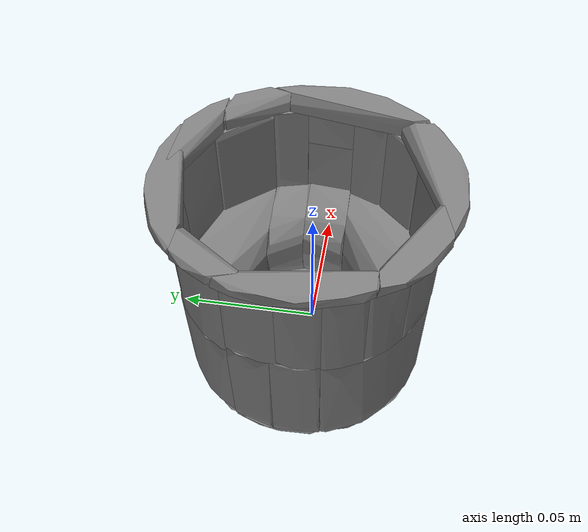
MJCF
<mujoco model="mug">
  <asset>
    <mesh file="../../meshes/ycb/mug/simple_mesh.stl" name="mug_mesh" scale="1 1 1"/>
    <mesh file="../../meshes/ycb/mug/mug_hull_1.stl" name="mug_hull_mesh_1" scale="1 1 1"/>
    <mesh file="../../meshes/ycb/mug/mug_hull_2.stl" name="mug_hull_mesh_2" scale="1 1 1"/>
    <mesh file="../../meshes/ycb/mug/mug_hull_3.stl" name="mug_hull_mesh_3" scale="1 1 1"/>
    <mesh file="../../meshes/ycb/mug/mug_hull_4.stl" name="mug_hull_mesh_4" scale="1 1 1"/>
    <mesh file="../../meshes/ycb/mug/mug_hull_5.stl" name="mug_hull_mesh_5" scale="1 1 1"/>
    <mesh file="../../meshes/ycb/mug/mug_hull_6.stl" name="mug_hull_mesh_6" scale="1 1 1"/>
    <mesh file="../../meshes/ycb/mug/mug_hull_7.stl" name="mug_hull_mesh_7" scale="1 1 1"/>
    <mesh file="../../meshes/ycb/mug/mug_hull_8.stl" name="mug_hull_mesh_8" scale="1 1 1"/>
    <mesh file="../../meshes/ycb/mug/mug_hull_9.stl" name="mug_hull_mesh_9" scale="1 1 1"/>
    <mesh file="../../meshes/ycb/mug/mug_hull_10.stl" name="mug_hull_mesh_10" scale="1 1 1"/>
    <mesh file="../../meshes/ycb/mug/mug_hull_11.stl" name="mug_hull_mesh_11" scale="1 1 1"/>
    <mesh file="../../meshes/ycb/mug/mug_hull_12.stl" name="mug_hull_mesh_12" scale="1 1 1"/>
    <mesh file="../../meshes/ycb/mug/mug_hull_13.stl" name="mug_hull_mesh_13" scale="1 1 1"/>
    <mesh file="../../meshes/ycb/mug/mug_hull_14.stl" name="mug_hull_mesh_14" scale="1 1 1"/>
    <mesh file="../../meshes/ycb/mug/mug_hull_15.stl" name="mug_hull_mesh_15" scale="1 1 1"/>
    <mesh file="../../meshes/ycb/mug/mug_hull_16.stl" name="mug_hull_mesh_16" scale="1 1 1"/>
    <mesh file="../../meshes/ycb/mug/mug_hull_17.stl" name="mug_hull_mesh_17" scale="1 1 1"/>
    <mesh file="../../meshes/ycb/mug/mug_hull_18.stl" name="mug_hull_mesh_18" scale="1 1 1"/>
    <mesh file="../../meshes/ycb/mug/mug_hull_19.stl" name="mug_hull_mesh_19" scale="1 1 1"/>
    <mesh file="../../meshes/ycb/mug/mug_hull_20.stl" name="mug_hull_mesh_20" scale="1 1 1"/>
    <mesh file="../../meshes/ycb/mug/mug_hull_21.stl" name="mug_hull_mesh_21" scale="1 1 1"/>
    <mesh file="../../meshes/ycb/mug/mug_hull_22.stl" name="mug_hull_mesh_22" scale="1 1 1"/>
    <mesh file="../../meshes/ycb/mug/mug_hull_23.stl" name="mug_hull_mesh_23" scale="1 1 1"/>
    <mesh file="../../meshes/ycb/mug/mug_hull_24.stl" name="mug_hull_mesh_24" scale="1 1 1"/>
    <mesh file="../../meshes/ycb/mug/mug_hull_25.stl" name="mug_hull_mesh_25" scale="1 1 1"/>
    <mesh file="../../meshes/ycb/mug/mug_hull_26.stl" name="mug_hull_mesh_26" scale="1 1 1"/>
    <mesh file="../../meshes/ycb/mug/mug_hull_27.stl" name="mug_hull_mesh_27" scale="1 1 1"/>
    <mesh file="../../meshes/ycb/mug/mug_hull_28.stl" name="mug_hull_mesh_28" scale="1 1 1"/>
    <mesh file="../../meshes/ycb/mug/mug_hull_29.stl" name="mug_hull_mesh_29" scale="1 1 1"/>
    <mesh file="../../meshes/ycb/mug/mug_hull_30.stl" name="mug_hull_mesh_30" scale="1 1 1"/>
    <mesh file="../../meshes/ycb/mug/mug_hull_31.stl" name="mug_hull_mesh_31" scale="1 1 1"/>
    <mesh file="../../meshes/ycb/mug/mug_hull_32.stl" name="mug_hull_mesh_32" scale="1 1 1"/>
    <mesh file="../../meshes/ycb/mug/mug_hull_33.stl" name="mug_hull_mesh_33" scale="1 1 1"/>
    <mesh file="../../meshes/ycb/mug/mug_hull_34.stl" name="mug_hull_mesh_34" scale="1 1 1"/>
    <mesh file="../../meshes/ycb/mug/mug_hull_35.stl" name="mug_hull_mesh_35" scale="1 1 1"/>
    <mesh file="../../meshes/ycb/mug/mug_hull_36.stl" name="mug_hull_mesh_36" scale="1 1 1"/>
    <mesh file="../../meshes/ycb/mug/mug_hull_37.stl" name="mug_hull_mesh_37" scale="1 1 1"/>
    <mesh file="../../meshes/ycb/mug/mug_hull_38.stl" name="mug_hull_mesh_38" scale="1 1 1"/>
    <mesh file="../../meshes/ycb/mug/mug_hull_39.stl" name="mug_hull_mesh_39" scale="1 1 1"/>
  </asset>
  <worldbody>
    <body>
      <body name="object">
        <geom pos="0 0 0" mesh="mug_mesh" type="mesh" contype="0" conaffinity="0" group="1"/>
        <geom pos="0 0 0" mesh="mug_hull_mesh_1" type="mesh" margin="0.001" solimp="0.998 0.998 0.001" solref="0.001 1" density="400" friction="0.95 0.3 0.1" group="0" condim="4"/>
        <geom pos="0 0 0" mesh="mug_hull_mesh_2" type="mesh" margin="0.001" solimp="0.998 0.998 0.001" solref="0.001 1" density="400" friction="0.95 0.3 0.1" group="0" condim="4"/>
        <geom pos="0 0 0" mesh="mug_hull_mesh_3" type="mesh" margin="0.001" solimp="0.998 0.998 0.001" solref="0.001 1" density="400" friction="0.95 0.3 0.1" group="0" condim="4"/>
        <geom pos="0 0 0" mesh="mug_hull_mesh_4" type="mesh" margin="0.001" solimp="0.998 0.998 0.001" solref="0.001 1" density="400" friction="0.95 0.3 0.1" group="0" condim="4"/>
        <geom pos="0 0 0" mesh="mug_hull_mesh_5" type="mesh" margin="0.001" solimp="0.998 0.998 0.001" solref="0.001 1" density="400" friction="0.95 0.3 0.1" group="0" condim="4"/>
        <geom pos="0 0 0" mesh="mug_hull_mesh_6" type="mesh" margin="0.001" solimp="0.998 0.998 0.001" solref="0.001 1" density="400" friction="0.95 0.3 0.1" group="0" condim="4"/>
        <geom pos="0 0 0" mesh="mug_hull_mesh_7" type="mesh" margin="0.001" solimp="0.998 0.998 0.001" solref="0.001 1" density="400" friction="0.95 0.3 0.1" group="0" condim="4"/>
        <geom pos="0 0 0" mesh="mug_hull_mesh_8" type="mesh" margin="0.001" solimp="0.998 0.998 0.001" solref="0.001 1" density="400" friction="0.95 0.3 0.1" group="0" condim="4"/>
        <geom pos="0 0 0" mesh="mug_hull_mesh_9" type="mesh" margin="0.001" solimp="0.998 0.998 0.001" solref="0.001 1" density="400" friction="0.95 0.3 0.1" group="0" condim="4"/>
        <geom pos="0 0 0" mesh="mug_hull_mesh_10" type="mesh" margin="0.001" solimp="0.998 0.998 0.001" solref="0.001 1" density="400" friction="0.95 0.3 0.1" group="0" condim="4"/>
        <geom pos="0 0 0" mesh="mug_hull_mesh_11" type="mesh" margin="0.001" solimp="0.998 0.998 0.001" solref="0.001 1" density="400" friction="0.95 0.3 0.1" group="0" condim="4"/>
        <geom pos="0 0 0" mesh="mug_hull_mesh_12" type="mesh" margin="0.001" solimp="0.998 0.998 0.001" solref="0.001 1" density="400" friction="0.95 0.3 0.1" group="0" condim="4"/>
        <geom pos="0 0 0" mesh="mug_hull_mesh_13" type="mesh" margin="0.001" solimp="0.998 0.998 0.001" solref="0.001 1" density="400" friction="0.95 0.3 0.1" group="0" condim="4"/>
        <geom pos="0 0 0" mesh="mug_hull_mesh_14" type="mesh" margin="0.001" solimp="0.998 0.998 0.001" solref="0.001 1" density="400" friction="0.95 0.3 0.1" group="0" condim="4"/>
        <geom pos="0 0 0" mesh="mug_hull_mesh_15" type="mesh" margin="0.001" solimp="0.998 0.998 0.001" solref="0.001 1" density="400" friction="0.95 0.3 0.1" group="0" condim="4"/>
        <geom pos="0 0 0" mesh="mug_hull_mesh_16" type="mesh" margin="0.001" solimp="0.998 0.998 0.001" solref="0.001 1" density="400" friction="0.95 0.3 0.1" group="0" condim="4"/>
        <geom pos="0 0 0" mesh="mug_hull_mesh_17" type="mesh" margin="0.001" solimp="0.998 0.998 0.001" solref="0.001 1" density="400" friction="0.95 0.3 0.1" group="0" condim="4"/>
        <geom pos="0 0 0" mesh="mug_hull_mesh_18" type="mesh" margin="0.001" solimp="0.998 0.998 0.001" solref="0.001 1" density="400" friction="0.95 0.3 0.1" group="0" condim="4"/>
        <geom pos="0 0 0" mesh="mug_hull_mesh_19" type="mesh" margin="0.001" solimp="0.998 0.998 0.001" solref="0.001 1" density="400" friction="0.95 0.3 0.1" group="0" condim="4"/>
        <geom pos="0 0 0" mesh="mug_hull_mesh_20" type="mesh" margin="0.001" solimp="0.998 0.998 0.001" solref="0.001 1" density="400" friction="0.95 0.3 0.1" group="0" condim="4"/>
        <geom pos="0 0 0" mesh="mug_hull_mesh_21" type="mesh" margin="0.001" solimp="0.998 0.998 0.001" solref="0.001 1" density="400" friction="0.95 0.3 0.1" group="0" condim="4"/>
        <geom pos="0 0 0" mesh="mug_hull_mesh_22" type="mesh" margin="0.001" solimp="0.998 0.998 0.001" solref="0.001 1" density="400" friction="0.95 0.3 0.1" group="0" condim="4"/>
        <geom pos="0 0 0" mesh="mug_hull_mesh_23" type="mesh" margin="0.001" solimp="0.998 0.998 0.001" solref="0.001 1" density="400" friction="0.95 0.3 0.1" group="0" condim="4"/>
        <geom pos="0 0 0" mesh="mug_hull_mesh_24" type="mesh" margin="0.001" solimp="0.998 0.998 0.001" solref="0.001 1" density="400" friction="0.95 0.3 0.1" group="0" condim="4"/>
        <geom pos="0 0 0" mesh="mug_hull_mesh_25" type="mesh" margin="0.001" solimp="0.998 0.998 0.001" solref="0.001 1" density="400" friction="0.95 0.3 0.1" group="0" condim="4"/>
        <geom pos="0 0 0" mesh="mug_hull_mesh_26" type="mesh" margin="0.001" solimp="0.998 0.998 0.001" solref="0.001 1" density="400" friction="0.95 0.3 0.1" group="0" condim="4"/>
        <geom pos="0 0 0" mesh="mug_hull_mesh_27" type="mesh" margin="0.001" solimp="0.998 0.998 0.001" solref="0.001 1" density="400" friction="0.95 0.3 0.1" group="0" condim="4"/>
        <geom pos="0 0 0" mesh="mug_hull_mesh_28" type="mesh" margin="0.001" solimp="0.998 0.998 0.001" solref="0.001 1" density="400" friction="0.95 0.3 0.1" group="0" condim="4"/>
        <geom pos="0 0 0" mesh="mug_hull_mesh_29" type="mesh" margin="0.001" solimp="0.998 0.998 0.001" solref="0.001 1" density="400" friction="0.95 0.3 0.1" group="0" condim="4"/>
        <geom pos="0 0 0" mesh="mug_hull_mesh_30" type="mesh" margin="0.001" solimp="0.998 0.998 0.001" solref="0.001 1" density="400" friction="0.95 0.3 0.1" group="0" condim="4"/>
        <geom pos="0 0 0" mesh="mug_hull_mesh_31" type="mesh" margin="0.001" solimp="0.998 0.998 0.001" solref="0.001 1" density="400" friction="0.95 0.3 0.1" group="0" condim="4"/>
        <geom pos="0 0 0" mesh="mug_hull_mesh_32" type="mesh" margin="0.001" solimp="0.998 0.998 0.001" solref="0.001 1" density="400" friction="0.95 0.3 0.1" group="0" condim="4"/>
        <geom pos="0 0 0" mesh="mug_hull_mesh_33" type="mesh" margin="0.001" solimp="0.998 0.998 0.001" solref="0.001 1" density="400" friction="0.95 0.3 0.1" group="0" condim="4"/>
        <geom pos="0 0 0" mesh="mug_hull_mesh_34" type="mesh" margin="0.001" solimp="0.998 0.998 0.001" solref="0.001 1" density="400" friction="0.95 0.3 0.1" group="0" condim="4"/>
        <geom pos="0 0 0" mesh="mug_hull_mesh_35" type="mesh" margin="0.001" solimp="0.998 0.998 0.001" solref="0.001 1" density="400" friction="0.95 0.3 0.1" group="0" condim="4"/>
        <geom pos="0 0 0" mesh="mug_hull_mesh_36" type="mesh" margin="0.001" solimp="0.998 0.998 0.001" solref="0.001 1" density="400" friction="0.95 0.3 0.1" group="0" condim="4"/>
        <geom pos="0 0 0" mesh="mug_hull_mesh_37" type="mesh" margin="0.001" solimp="0.998 0.998 0.001" solref="0.001 1" density="400" friction="0.95 0.3 0.1" group="0" condim="4"/>
        <geom pos="0 0 0" mesh="mug_hull_mesh_38" type="mesh" margin="0.001" solimp="0.998 0.998 0.001" solref="0.001 1" density="400" friction="0.95 0.3 0.1" group="0" condim="4"/>
        <geom pos="0 0 0" mesh="mug_hull_mesh_39" type="mesh" margin="0.001" solimp="0.998 0.998 0.001" solref="0.001 1" density="400" friction="0.95 0.3 0.1" group="0" condim="4"/>
      </body>
      <site rgba="0 0 0 0" size="0.005" pos="0 0 -0.001" name="bottom_site"/>
      <site rgba="0 0 0 0" size="0.005" pos="0 0 0.02" name="top_site"/>
      <site rgba="0 0 0 0" size="0.005" pos="0.0375 0.02 0" name="horizontal_radius_site"/>
    </body>
  </worldbody>
</mujoco>
